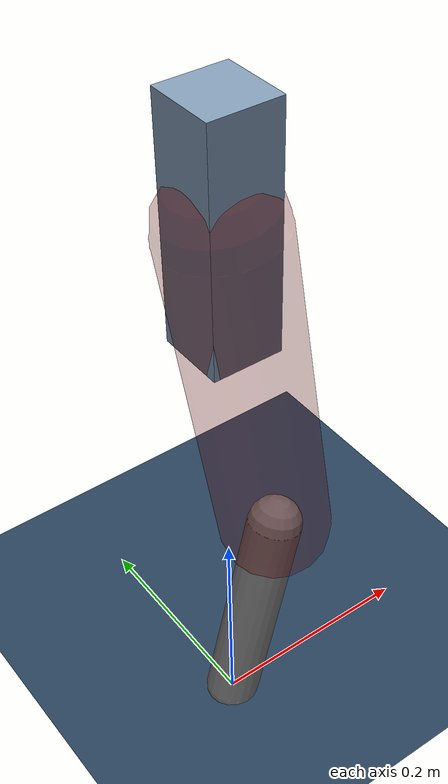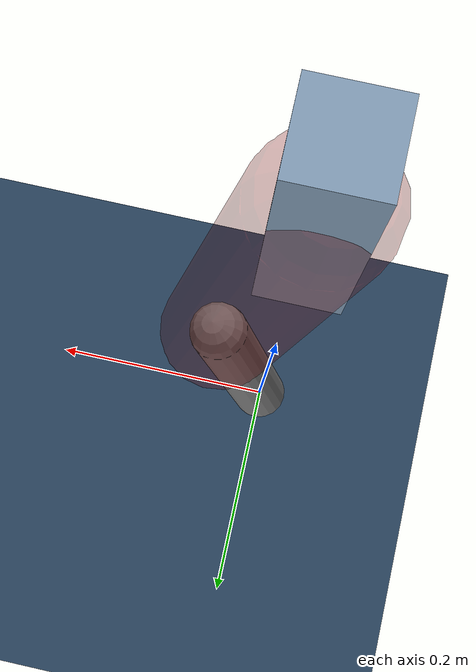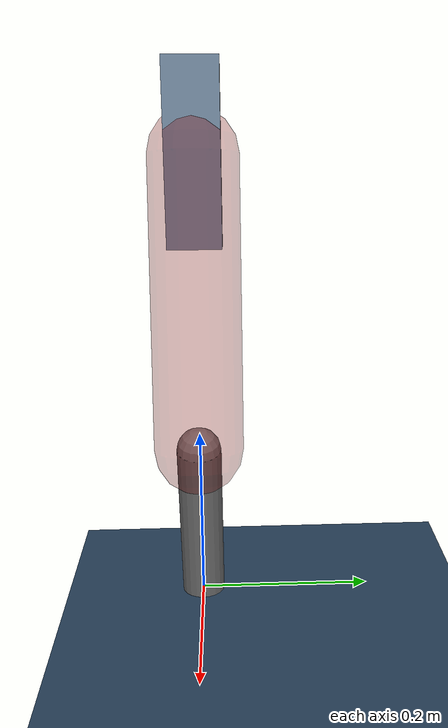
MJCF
<mujoco model="Hopper2D">
	<compiler inertiafromgeom="true" angle="radian" />
	<option timestep="0.001" integrator="implicit" cone="elliptic" solver="Newton" tolerance="1e-10" />

	<default>
		<geom contype="1" conaffinity="1" condim="3" friction="2 0.005 0.0001" solref="0.005 1" />
		<joint limited="true" damping="0.1" />
	</default>

	<asset>
		<texture name="skybox" type="skybox" builtin="gradient" rgb1=".4 .6 .8" rgb2="0 0 0" width="800" height="800" />
		<texture name="grid" type="2d" builtin="checker" rgb1=".1 .2 .3" rgb2=".2 .3 .4" width="300" height="300" mark="edge" markrgb=".2 .3 .4" />
		<material name="ground" texture="grid" texrepeat="1 1" texuniform="true" reflectance="0.1" />
		<material name="leg" rgba="0.5 0.6 0.7 1" />
	</asset>

	<worldbody>

		<geom name="floor" type="plane" size="5 5 0.25" material="ground" />

		<light directional="false" diffuse="0.8 0.8 0.8" specular="0.3 0.3 0.3" pos="0 0 2" dir="0 0 -1" />
		<light mode="targetbodycom" target="base" directional="false" diffuse="0.8 0.8 0.8" specular="0.3 0.3 0.3" pos="0 0 2" dir="0 0 -1" />

		<camera name="fixed" pos="0 -2 1" xyaxes="1 0 0 0 0 1" />
		<camera name="tracking" mode="trackcom" pos="0 -3 1" />

		<body name="root" pos="0 0 0.5220627814834642">
			<joint name="slide_x" type="slide" axis="1 0 0" range="-100 100" />
			<joint name="slide_z" type="slide" axis="0 0 1" range="0 10" />

			<body name="base" pos="0 0 0">
				<geom name="torso" type="box" size="0.03 0.03 0.1" mass="2.073" material="leg" />

				<body name="link1" pos="0 0 0" euler="0 1.416784414510717 0">
					<joint type="hinge" axis="0 -1 0" pos="0 0 0" name="hinge1" limited="true" range="-3.14 3.14" stiffness="0" damping="0.1" />
					<geom name="thigh" type="capsule" fromto="0 0 0 0.32576265535609217 0 0" size="0.05" rgba="0.5 0 0 0.3" mass="1.059135434997058" />

					<body name="link2" pos="0.32576265535609217 0 0" euler="0 0.3986812713945069 0">
						<joint type="hinge" axis="0 -1 0" pos="0 0 0" name="hinge2" limited="true" range="-3.14 3.14" stiffness="0" damping="0.1" />
						<geom name="shank" type="capsule" fromto="0 0 0 0.20630012612737206 0 0" size="0.025" mass="0.40617011351463483" />

					</body>
				</body>
			</body>
		</body>
	</worldbody>

	<actuator>
		<motor name="torque1" joint="hinge1" ctrlrange="-60.744624984890194 60.744624984890194" ctrllimited="true" gear="1" />
		<motor name="torque2" joint="hinge2" ctrlrange="-98.90055058983422 98.90055058983422" ctrllimited="true" gear="1" />
	</actuator>
</mujoco>
